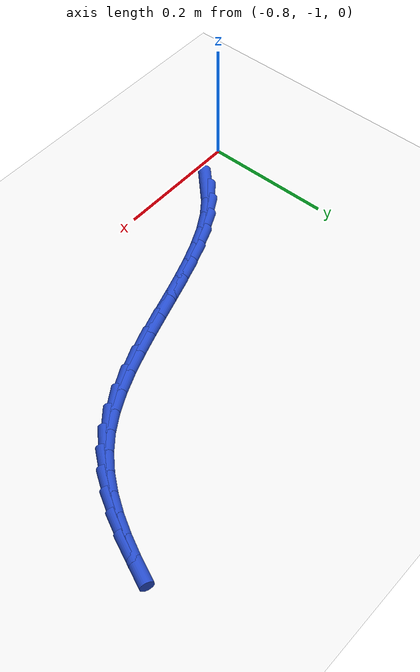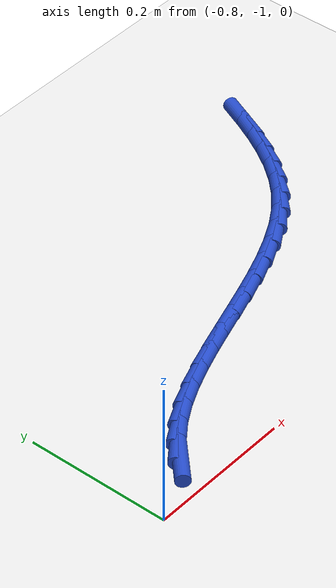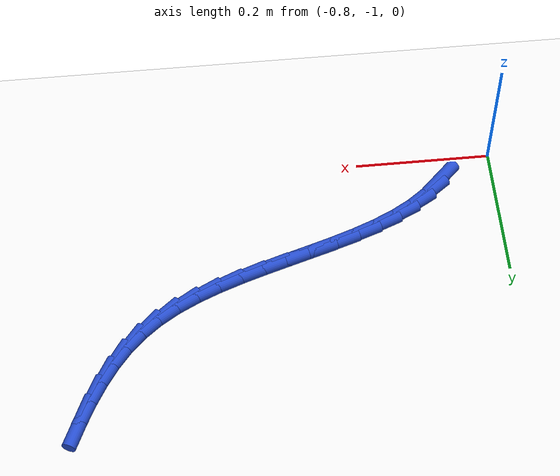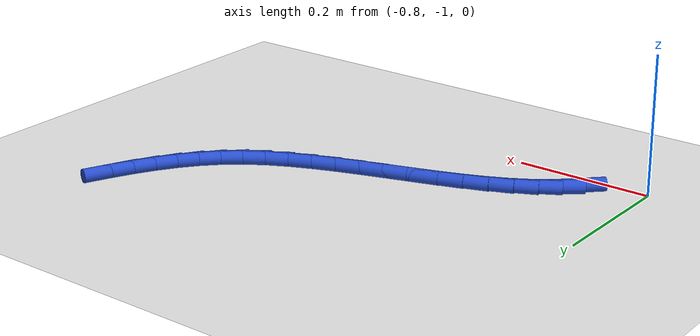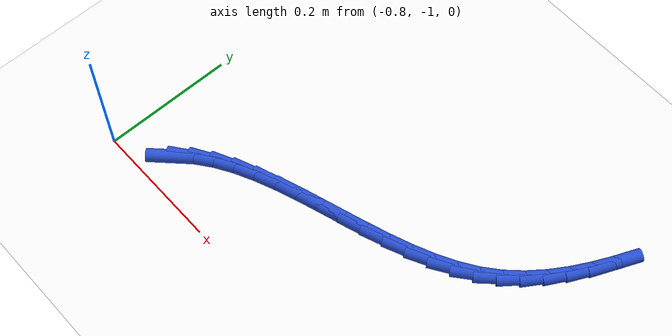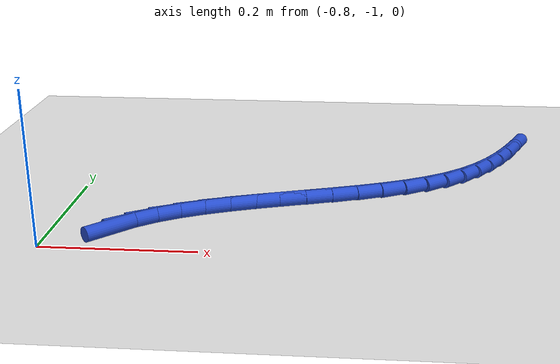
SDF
<sdf version="1.6">
 <world name="default">
  <model name="ground_plane">
   <static>1</static>
   <link name="link">
    <collision name="collision">
     <geometry><plane><normal>0 0 1</normal><size>100 100</size></plane></geometry>
     <surface><friction><ode><mu>100</mu><mu2>50</mu2></ode></friction></surface>
    </collision>
    <visual name="visual">
     <cast_shadows>0</cast_shadows>
     <geometry><plane><normal>0 0 1</normal><size>100 100</size></plane></geometry>
     <material>
      <script><uri>file://media/materials/scripts/gazebo.material</uri><name>Gazebo/WhiteGlow</name></script>
     </material>
    </visual>
   </link>
  </model>
  <model name="line">
   <link name="link_210">
    <pose>-0.7165487588948743 -0.9539591028464685 0.01 0 1.57 0.7811691037423205</pose>
    <collision name="collision">
     <geometry><cylinder><radius>0.01</radius><length>0.08</length></cylinder></geometry>
    </collision>
    <visual name="visual">
     <material>
      <script><name>Gazebo/Blue</name><uri>file://media/materials/scripts/gazebo.material</uri></script>
     </material>
     <geometry><cylinder><radius>0.01</radius><length>0.08</length></cylinder></geometry>
    </visual>
   </link>
   <link name="link_211">
    <pose>-0.6955305418911678 -0.9331179128275627 0.01 0 1.57 0.6407695847477377</pose>
    <collision name="collision">
     <geometry><cylinder><radius>0.01</radius><length>0.08</length></cylinder></geometry>
    </collision>
    <visual name="visual">
     <material>
      <script><name>Gazebo/Blue</name><uri>file://media/materials/scripts/gazebo.material</uri></script>
     </material>
     <geometry><cylinder><radius>0.01</radius><length>0.08</length></cylinder></geometry>
    </visual>
   </link>
   <link name="link_212">
    <pose>-0.6711214365607282 -0.9149150493159782 0.01 0 1.57 0.5287817671897582</pose>
    <collision name="collision">
     <geometry><cylinder><radius>0.01</radius><length>0.08</length></cylinder></geometry>
    </collision>
    <visual name="visual">
     <material>
      <script><name>Gazebo/Blue</name><uri>file://media/materials/scripts/gazebo.material</uri></script>
     </material>
     <geometry><cylinder><radius>0.01</radius><length>0.08</length></cylinder></geometry>
    </visual>
   </link>
   <link name="link_213">
    <pose>-0.643803680612137 -0.8989537836537203 0.01 0 1.57 0.44311681608466497</pose>
    <collision name="collision">
     <geometry><cylinder><radius>0.01</radius><length>0.08</length></cylinder></geometry>
    </collision>
    <visual name="visual">
     <material>
      <script><name>Gazebo/Blue</name><uri>file://media/materials/scripts/gazebo.material</uri></script>
     </material>
     <geometry><cylinder><radius>0.01</radius><length>0.08</length></cylinder></geometry>
    </visual>
   </link>
   <link name="link_214">
    <pose>-0.6140595117539754 -0.8848373871827944 0.01 0 1.57 0.3803137077765862</pose>
    <collision name="collision">
     <geometry><cylinder><radius>0.01</radius><length>0.08</length></cylinder></geometry>
    </collision>
    <visual name="visual">
     <material>
      <script><name>Gazebo/Blue</name><uri>file://media/materials/scripts/gazebo.material</uri></script>
     </material>
     <geometry><cylinder><radius>0.01</radius><length>0.08</length></cylinder></geometry>
    </visual>
   </link>
   <link name="link_215">
    <pose>-0.5823711676948251 -0.8721691312452065 0.01 0 1.57 0.33705759697600407</pose>
    <collision name="collision">
     <geometry><cylinder><radius>0.01</radius><length>0.08</length></cylinder></geometry>
    </collision>
    <visual name="visual">
     <material>
      <script><name>Gazebo/Blue</name><uri>file://media/materials/scripts/gazebo.material</uri></script>
     </material>
     <geometry><cylinder><radius>0.01</radius><length>0.08</length></cylinder></geometry>
    </visual>
   </link>
   <link name="link_216">
    <pose>-0.5492208861432676 -0.8605522871829616 0.01 0 1.57 0.3107807632086069</pose>
    <collision name="collision">
     <geometry><cylinder><radius>0.01</radius><length>0.08</length></cylinder></geometry>
    </collision>
    <visual name="visual">
     <material>
      <script><name>Gazebo/Blue</name><uri>file://media/materials/scripts/gazebo.material</uri></script>
     </material>
     <geometry><cylinder><radius>0.01</radius><length>0.08</length></cylinder></geometry>
    </visual>
   </link>
   <link name="link_217">
    <pose>-0.5150909048078842 -0.849590126338066 0.01 0 1.57 0.2998071308800135</pose>
    <collision name="collision">
     <geometry><cylinder><radius>0.01</radius><length>0.08</length></cylinder></geometry>
    </collision>
    <visual name="visual">
     <material>
      <script><name>Gazebo/Blue</name><uri>file://media/materials/scripts/gazebo.material</uri></script>
     </material>
     <geometry><cylinder><radius>0.01</radius><length>0.08</length></cylinder></geometry>
    </visual>
   </link>
   <link name="link_218">
    <pose>-0.4804634613972565 -0.8388859200525242 0.01 0 1.57 0.3033357284079534</pose>
    <collision name="collision">
     <geometry><cylinder><radius>0.01</radius><length>0.08</length></cylinder></geometry>
    </collision>
    <visual name="visual">
     <material>
      <script><name>Gazebo/Blue</name><uri>file://media/materials/scripts/gazebo.material</uri></script>
     </material>
     <geometry><cylinder><radius>0.01</radius><length>0.08</length></cylinder></geometry>
    </visual>
   </link>
   <link name="link_219">
    <pose>-0.4458207936199662 -0.8280429396683432 0.01 0 1.57 0.3213975861013746</pose>
    <collision name="collision">
     <geometry><cylinder><radius>0.01</radius><length>0.08</length></cylinder></geometry>
    </collision>
    <visual name="visual">
     <material>
      <script><name>Gazebo/Blue</name><uri>file://media/materials/scripts/gazebo.material</uri></script>
     </material>
     <geometry><cylinder><radius>0.01</radius><length>0.08</length></cylinder></geometry>
    </visual>
   </link>
   <link name="link_220">
    <pose>-0.4116451391845944 -0.8166644565275272 0.01 0 1.57 0.3548284286112042</pose>
    <collision name="collision">
     <geometry><cylinder><radius>0.01</radius><length>0.08</length></cylinder></geometry>
    </collision>
    <visual name="visual">
     <material>
      <script><name>Gazebo/Blue</name><uri>file://media/materials/scripts/gazebo.material</uri></script>
     </material>
     <geometry><cylinder><radius>0.01</radius><length>0.08</length></cylinder></geometry>
    </visual>
   </link>
   <link name="link_221">
    <pose>-0.37841873579972285 -0.8043537419720826 0.01 0 1.57 0.40524466812119875</pose>
    <collision name="collision">
     <geometry><cylinder><radius>0.01</radius><length>0.08</length></cylinder></geometry>
    </collision>
    <visual name="visual">
     <material>
      <script><name>Gazebo/Blue</name><uri>file://media/materials/scripts/gazebo.material</uri></script>
     </material>
     <geometry><cylinder><radius>0.01</radius><length>0.08</length></cylinder></geometry>
    </visual>
   </link>
   <link name="link_222">
    <pose>-0.3466238211739329 -0.7907140673440147 0.01 0 1.57 0.474955048247513</pose>
    <collision name="collision">
     <geometry><cylinder><radius>0.01</radius><length>0.08</length></cylinder></geometry>
    </collision>
    <visual name="visual">
     <material>
      <script><name>Gazebo/Blue</name><uri>file://media/materials/scripts/gazebo.material</uri></script>
     </material>
     <geometry><cylinder><radius>0.01</radius><length>0.08</length></cylinder></geometry>
    </visual>
   </link>
   <link name="link_223">
    <pose>-0.31674263301580613 -0.7753487039853293 0.01 0 1.57 0.5666562816502922</pose>
    <collision name="collision">
     <geometry><cylinder><radius>0.01</radius><length>0.08</length></cylinder></geometry>
    </collision>
    <visual name="visual">
     <material>
      <script><name>Gazebo/Blue</name><uri>file://media/materials/scripts/gazebo.material</uri></script>
     </material>
     <geometry><cylinder><radius>0.01</radius><length>0.08</length></cylinder></geometry>
    </visual>
   </link>
   <link name="link_224">
    <pose>-0.2892574090339239 -0.7578609232380313 0.01 0 1.57 0.6807717737147959</pose>
    <collision name="collision">
     <geometry><cylinder><radius>0.01</radius><length>0.08</length></cylinder></geometry>
    </collision>
    <visual name="visual">
     <material>
      <script><name>Gazebo/Blue</name><uri>file://media/materials/scripts/gazebo.material</uri></script>
     </material>
     <geometry><cylinder><radius>0.01</radius><length>0.08</length></cylinder></geometry>
    </visual>
   </link>
   <link name="link_225">
    <pose>-0.26460433237653697 -0.7378934439884159 0.01 0 1.57 0.7969883587509844</pose>
    <collision name="collision">
     <geometry><cylinder><radius>0.01</radius><length>0.08</length></cylinder></geometry>
    </collision>
    <visual name="visual">
     <material>
      <script><name>Gazebo/Blue</name><uri>file://media/materials/scripts/gazebo.material</uri></script>
     </material>
     <geometry><cylinder><radius>0.01</radius><length>0.08</length></cylinder></geometry>
    </visual>
   </link>
   <link name="link_226">
    <pose>-0.242731195727982 -0.7155073107851425 0.01 0 1.57 0.8998993304934002</pose>
    <collision name="collision">
     <geometry><cylinder><radius>0.01</radius><length>0.08</length></cylinder></geometry>
    </collision>
    <visual name="visual">
     <material>
      <script><name>Gazebo/Blue</name><uri>file://media/materials/scripts/gazebo.material</uri></script>
     </material>
     <geometry><cylinder><radius>0.01</radius><length>0.08</length></cylinder></geometry>
    </visual>
   </link>
   <link name="link_227">
    <pose>-0.2232916692323279 -0.6910154957134754 0.01 0 1.57 0.987137530196019</pose>
    <collision name="collision">
     <geometry><cylinder><radius>0.01</radius><length>0.08</length></cylinder></geometry>
    </collision>
    <visual name="visual">
     <material>
      <script><name>Gazebo/Blue</name><uri>file://media/materials/scripts/gazebo.material</uri></script>
     </material>
     <geometry><cylinder><radius>0.01</radius><length>0.08</length></cylinder></geometry>
    </visual>
   </link>
   <link name="link_228">
    <pose>-0.20593538242887385 -0.6647344317957592 0.01 0 1.57 1.0580823029662563</pose>
    <collision name="collision">
     <geometry><cylinder><radius>0.01</radius><length>0.08</length></cylinder></geometry>
    </collision>
    <visual name="visual">
     <material>
      <script><name>Gazebo/Blue</name><uri>file://media/materials/scripts/gazebo.material</uri></script>
     </material>
     <geometry><cylinder><radius>0.01</radius><length>0.08</length></cylinder></geometry>
    </visual>
   </link>
   <link name="link_229">
    <pose>-0.19031196485691895 -0.6369805520543385 0.01 0 1.57 1.1130939205228476</pose>
    <collision name="collision">
     <geometry><cylinder><radius>0.01</radius><length>0.08</length></cylinder></geometry>
    </collision>
    <visual name="visual">
     <material>
      <script><name>Gazebo/Blue</name><uri>file://media/materials/scripts/gazebo.material</uri></script>
     </material>
     <geometry><cylinder><radius>0.01</radius><length>0.08</length></cylinder></geometry>
    </visual>
   </link>
   <link name="link_230">
    <pose>-0.17607104605576251 -0.6080702895115582 0.01 0 1.57 1.1529517220146572</pose>
    <collision name="collision">
     <geometry><cylinder><radius>0.01</radius><length>0.08</length></cylinder></geometry>
    </collision>
    <visual name="visual">
     <material>
      <script><name>Gazebo/Blue</name><uri>file://media/materials/scripts/gazebo.material</uri></script>
     </material>
     <geometry><cylinder><radius>0.01</radius><length>0.08</length></cylinder></geometry>
    </visual>
   </link>
  </model>
 </world>
</sdf>
